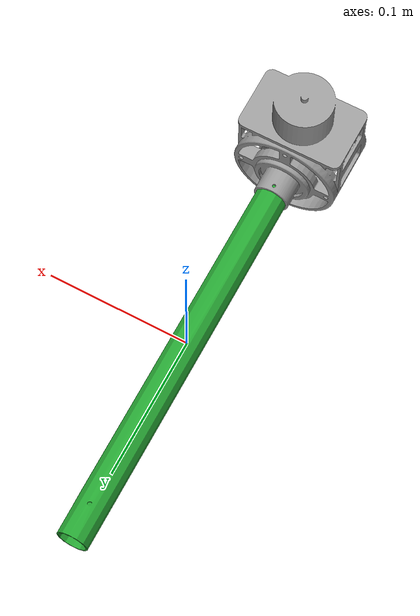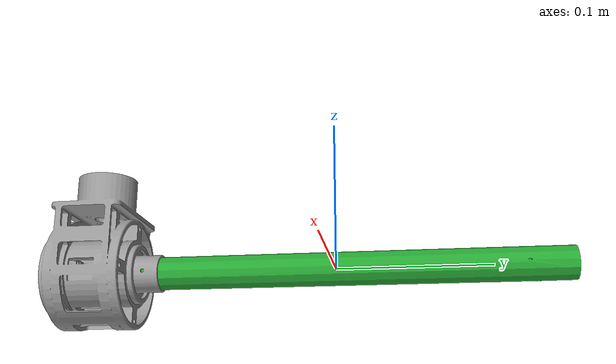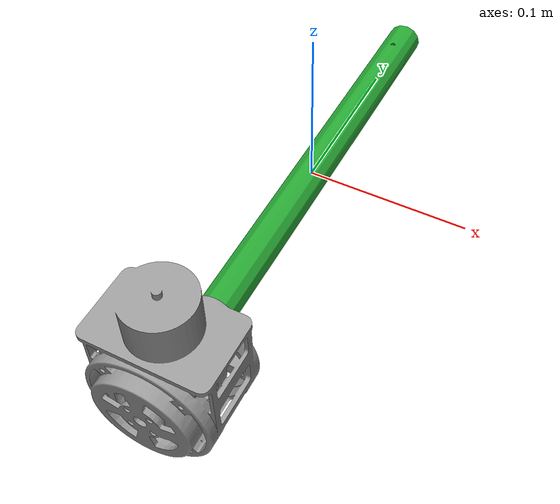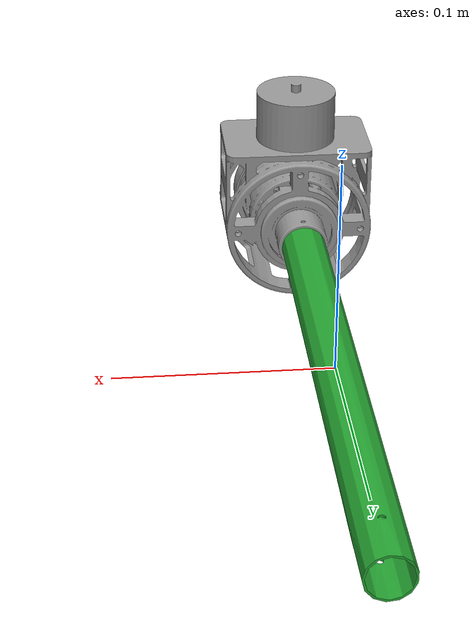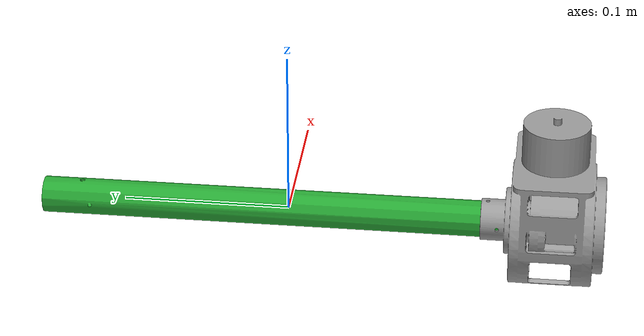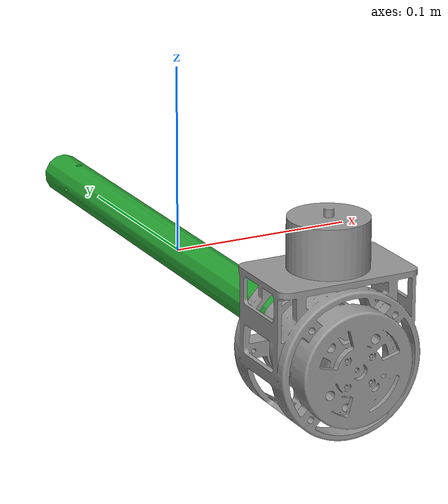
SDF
<?xml version="1.0" ?>

  <sdf version="1.5">
    <model name="arduwoodpecker_tiltrotor">
      <link name="tiltrotor_tube">
      <pose>0 0 0 0 0 0</pose>
      <inertial>
        <pose>0 0 0 0 0 0</pose>
        <mass>0.2</mass>
        <inertia>
          <ixx>0.01</ixx>
          <iyy>0.01</iyy>
          <izz>0.01</izz>
          <ixy>0</ixy>
          <ixz>0</ixz>
          <iyz>0</iyz>
        </inertia>
      </inertial>
      <collision name="tiltrotor_tube_collision">
        <pose>0 0 0 1.5707963267948966 -0 0</pose>
        <geometry>
          <cylinder>
            <length>0.3</length>
            <radius>0.011</radius>
          </cylinder>
        </geometry>
        <surface>
          <contact>
            <ode>
              <max_vel>100.0</max_vel>
              <min_depth>0.001</min_depth>
            </ode>
          </contact>
        </surface>
      </collision>
      <visual name="tiltrotor_tube_visual">
        <geometry>
          <mesh>
            <uri>model://arduwoodpecker_tiltrotor/meshes/tiltrotor_tube.STL</uri>
          </mesh>
        </geometry>
        <material>
          <script>
            <name>Gazebo/Green</name>
          </script>
        </material>
      </visual>
    </link>
    <link name="tiltrotor_tilt">
    <pose>0 -0.15925 0 0 0 0</pose>
    <inertial>
      <pose>0 0 0 0 0 0</pose>
      <mass>0.2</mass>
      <inertia>
        <ixx>0.01</ixx>
        <iyy>0.01</iyy>
        <izz>0.01</izz>
        <ixy>0</ixy>
        <ixz>0</ixz>
        <iyz>0</iyz>
      </inertia>
    </inertial>
    <collision name="tiltrotor_collision">
      <pose>0 0 0 0 -0 0</pose>
      <geometry>
        <box>
          <size>0.068 0.042 0.08</size>
        </box>
      </geometry>
      <surface>
        <contact>
          <ode>
            <max_vel>100.0</max_vel>
            <min_depth>0.001</min_depth>
          </ode>
        </contact>
      </surface>
    </collision>
    <visual name="tiltrotor_tilt_visual">
      <geometry>
        <mesh>
          <uri>model://arduwoodpecker_tiltrotor/meshes/tiltrotor_tilt.STL</uri>
        </mesh>
      </geometry>
        <material>
          <script>
            <name>Gazebo/Grey</name>
          </script>
        </material>
    </visual>
  </link>
  <joint name='tiltrotor_tilt_joint' type='revolute'>
    <child>tiltrotor_tilt</child>
    <parent>tiltrotor_tube</parent>
    <axis>
      <xyz>0 -1 0</xyz>
      <limit>
        <lower>-1e+16</lower>
        <upper>1e+16</upper>
      </limit>
      <dynamics>
        <damping>0.00001</damping>
      </dynamics>
      <use_parent_model_frame>1</use_parent_model_frame>
    </axis>

  </joint>
</model>
</sdf>
